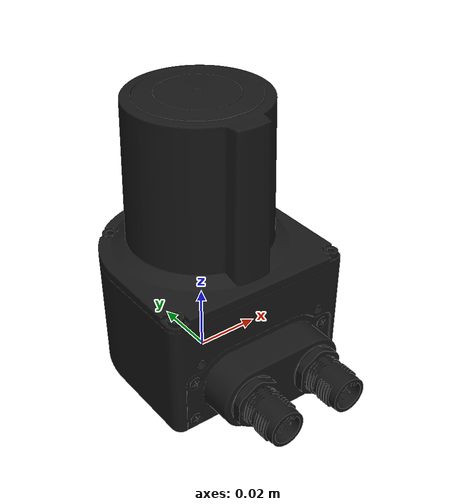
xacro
<?xml version="1.0"?>

<robot name="lsc" xmlns:xacro="http://www.ros.org/wiki/xacro">
    <link name="lsc_mount">
      <visual>
        <geometry>
          <mesh filename="package://lsc_ros2_driver/urdf/lsc-c25ct3-bet.dae"/>
        </geometry>
        <origin rpy="0 0 0" xyz="0 0 0"/>
      </visual>
      <collision>
        <geometry>
          <mesh filename="package://lsc_ros2_driver/urdf/lsc-c25ct3-bet.stl"/>
        </geometry>
      </collision>
    </link>

    <joint name="lsc_joint" type="fixed">
      <parent link="lsc_mount" />
      <child link="laser" />
      <origin rpy="0 0 0" xyz="0 0 0.0546"/>
    </joint>

    <link name="laser">
    </link>
</robot>
